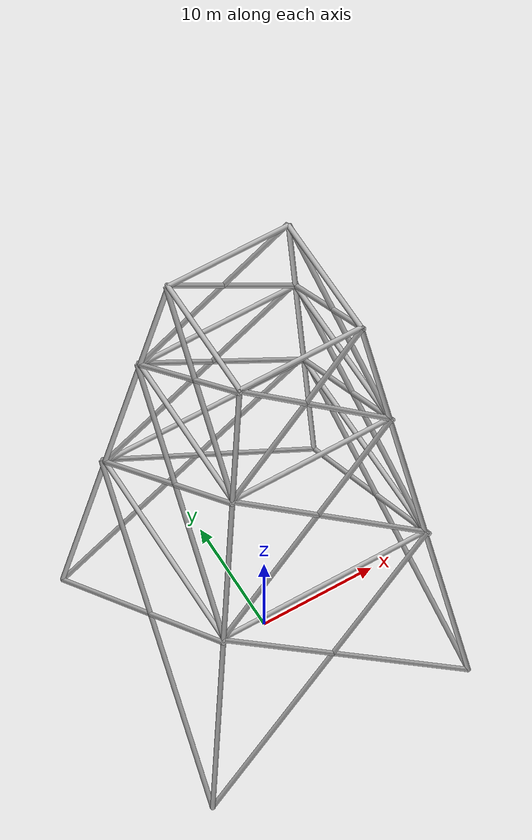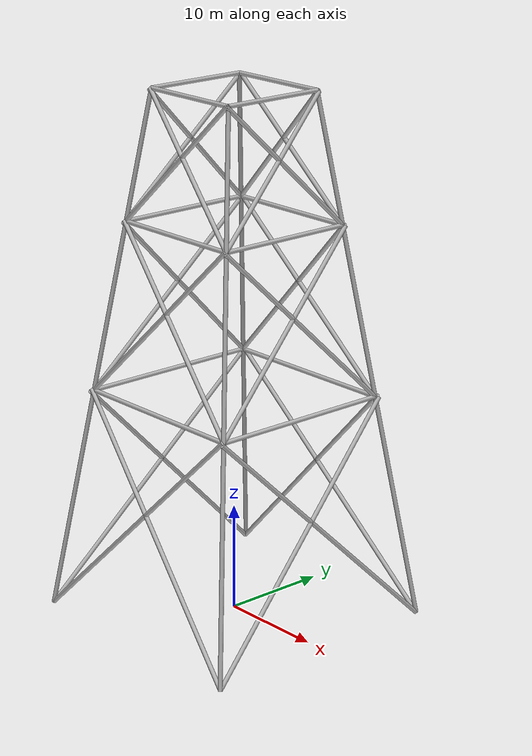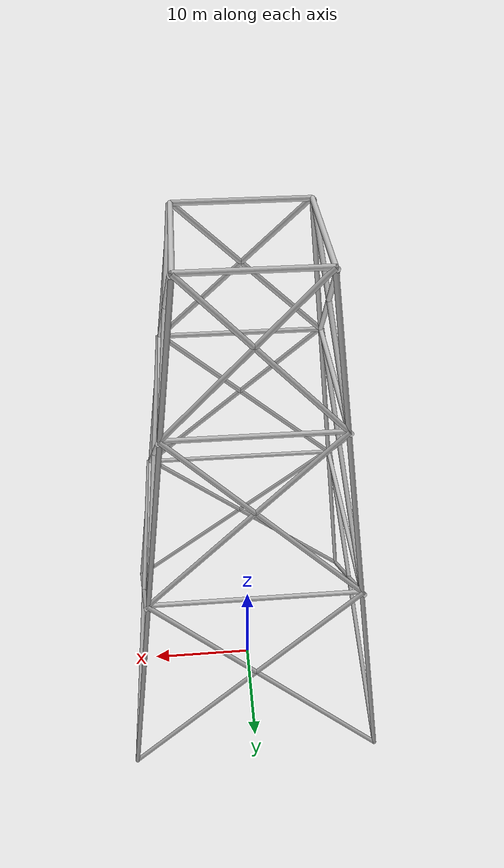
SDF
<?xml version="1.0" ?>
<sdf version="1.6">
  <model name="full_jacket">
    <static>true</static>
    <link name="base_link">
      <pose>0 0 0 0 0 0</pose>
      <visual name="base_link">
        <geometry>
          <box><size>0.01 0.01 0.01</size></box>
        </geometry>
      </visual>
    </link>

    # 4 legs of the jacket structure
    <link name="leg1">
      <pose>-8.395 -8.395 24.135 -0.1396 0.1396 0</pose>
      <visual name="visual_leg1">
        <geometry>
          <cylinder>
            <radius>0.2</radius>
            <length>49.28</length>
          </cylinder>
        </geometry>
      </visual>
      <collision name="collision_leg1">
        <geometry>
          <cylinder>
            <radius>0.2</radius>
            <length>49.28</length>
          </cylinder>
        </geometry>
      </collision>
      <inertial>
        <mass>0.5</mass>
        <inertia>
          <ixx>0.5</ixx><iyy>0.5</iyy><izz>0.5</izz>
          <ixy>0.0</ixy><ixz>0.0</ixz><iyz>0.0</iyz>
        </inertia>
      </inertial>
    </link>
    <joint name="joint_leg1" type="fixed">
      <parent>base_link</parent>
      <child>leg1</child>
    </joint>
    <link name="leg2">
      <pose>8.395 -8.395 24.135 -0.1396 -0.1396 0</pose>
      <visual name="visual_leg2">
        <geometry>
          <cylinder>
            <radius>0.2</radius>
            <length>49.28</length>
          </cylinder>
        </geometry>
      </visual>
      <collision name="collision_leg2">
        <geometry>
          <cylinder>
            <radius>0.2</radius>
            <length>49.28</length>
          </cylinder>
        </geometry>
      </collision>
      <inertial>
        <mass>0.5</mass>
        <inertia>
          <ixx>0.5</ixx><iyy>0.5</iyy><izz>0.5</izz>
          <ixy>0.0</ixy><ixz>0.0</ixz><iyz>0.0</iyz>
        </inertia>
      </inertial>
    </link>
    <joint name="joint_leg2" type="fixed">
      <parent>base_link</parent>
      <child>leg2</child>
    </joint>
    <link name="leg3">
      <pose>8.395 8.395 24.135 0.1396 -0.1396 0</pose>
      <visual name="visual_leg3">
        <geometry>
          <cylinder>
            <radius>0.2</radius>
            <length>49.28</length>
          </cylinder>
        </geometry>
      </visual>
      <collision name="collision_leg3">
        <geometry>
          <cylinder>
            <radius>0.2</radius>
            <length>49.28</length>
          </cylinder>
        </geometry>
      </collision>
      <inertial>
        <mass>0.5</mass>
        <inertia>
          <ixx>0.5</ixx><iyy>0.5</iyy><izz>0.5</izz>
          <ixy>0.0</ixy><ixz>0.0</ixz><iyz>0.0</iyz>
        </inertia>
      </inertial>
    </link>
    <joint name="joint_leg3" type="fixed">
      <parent>base_link</parent>
      <child>leg3</child>
    </joint>
    <link name="leg4">
      <pose>-8.395 8.395 24.135 0.1396 0.1396 0</pose>
      <visual name="visual_leg4">
        <geometry>
          <cylinder>
            <radius>0.2</radius>
            <length>49.28</length>
          </cylinder>
        </geometry>z`
      </visual>
      <collision name="collision_leg4">
        <geometry>
          <cylinder>
            <radius>0.2</radius>
            <length>49.28</length>
          </cylinder>
        </geometry>
      </collision>
      <inertial>
        <mass>0.5</mass>
        <inertia>
          <ixx>0.5</ixx><iyy>0.5</iyy><izz>0.5</izz>
          <ixy>0.0</ixy><ixz>0.0</ixz><iyz>0.0</iyz>
        </inertia>
      </inertial>
    </link>
    <joint name="joint_leg4" type="fixed">
      <parent>base_link</parent>
      <child>leg4</child>
    </joint>

    # 12 horizontal connectors at top of each bay
    <link name="conn_12_48">
      <pose>0.0000 -5.0000 48.2700 0.0000 1.5708 0.0000</pose>
      <visual name="visual_conn_12_48">
        <geometry>
          <cylinder>
            <radius>0.2</radius>
            <length>10.0000</length>
          </cylinder>
        </geometry>
      </visual>
      <collision name="collision_conn_12_48">
        <geometry>
          <cylinder>
            <radius>0.2</radius>
            <length>10.0000</length>
          </cylinder>
        </geometry>
      </collision>
      <inertial>
        <mass>1.0</mass>
        <inertia>
          <ixx>0.5</ixx><iyy>0.5</iyy><izz>0.5</izz>
          <ixy>0.0</ixy><ixz>0.0</ixz><iyz>0.0</iyz>
        </inertia>
      </inertial>
    </link>
    <joint name="joint_conn_12_48" type="fixed">
      <parent>base_link</parent>
      <child>conn_12_48</child>
    </joint>
    <link name="conn_23_48">
      <pose>5.0000 0.0000 48.2700 1.5708 0.0000 0.0000</pose>
      <visual name="visual_conn_23_48">
        <geometry>
          <cylinder>
            <radius>0.2</radius>
            <length>10.0000</length>
          </cylinder>
        </geometry>
      </visual>
      <collision name="collision_conn_23_48">
        <geometry>
          <cylinder>
            <radius>0.2</radius>
            <length>10.0000</length>
          </cylinder>
        </geometry>
      </collision>
      <inertial>
        <mass>1.0</mass>
        <inertia>
          <ixx>0.5</ixx><iyy>0.5</iyy><izz>0.5</izz>
          <ixy>0.0</ixy><ixz>0.0</ixz><iyz>0.0</iyz>
        </inertia>
      </inertial>
    </link>
    <joint name="joint_conn_23_48" type="fixed">
      <parent>base_link</parent>
      <child>conn_23_48</child>
    </joint>
    <link name="conn_34_48">
      <pose>0.0000 5.0000 48.2700 0.0000 1.5708 0.0000</pose>
      <visual name="visual_conn_34_48">
        <geometry>
          <cylinder>
            <radius>0.2</radius>
            <length>10.0000</length>
          </cylinder>
        </geometry>
      </visual>
      <collision name="collision_conn_34_48">
        <geometry>
          <cylinder>
            <radius>0.2</radius>
            <length>10.0000</length>
          </cylinder>
        </geometry>
      </collision>
      <inertial>
        <mass>1.0</mass>
        <inertia>
          <ixx>0.5</ixx><iyy>0.5</iyy><izz>0.5</izz>
          <ixy>0.0</ixy><ixz>0.0</ixz><iyz>0.0</iyz>
        </inertia>
      </inertial>
    </link>
    <joint name="joint_conn_34_48" type="fixed">
      <parent>base_link</parent>
      <child>conn_34_48</child>
    </joint>
    <link name="conn_41_48">
      <pose>-5.0000 0.0000 48.2700 1.5708 0.0000 0.0000</pose>
      <visual name="visual_conn_41_48">
        <geometry>
          <cylinder>
            <radius>0.2</radius>
            <length>10.0000</length>
          </cylinder>
        </geometry>
      </visual>
      <collision name="collision_conn_41_48">
        <geometry>
          <cylinder>
            <radius>0.2</radius>
            <length>10.0000</length>
          </cylinder>
        </geometry>
      </collision>
      <inertial>
        <mass>1.0</mass>
        <inertia>
          <ixx>0.5</ixx><iyy>0.5</iyy><izz>0.5</izz>
          <ixy>0.0</ixy><ixz>0.0</ixz><iyz>0.0</iyz>
        </inertia>
      </inertial>
    </link>
    <joint name="joint_conn_41_48" type="fixed">
      <parent>base_link</parent>
      <child>conn_41_48</child>
    </joint>
    <link name="conn_12_36">
      <pose>0.0000 6.6544 36.5000 0.0000 1.5708 0.0000</pose>
      <visual name="visual_conn_12_36">
        <geometry>
          <cylinder>
            <radius>0.2</radius>
            <length>13.3089</length>
          </cylinder>
        </geometry>
      </visual>
      <collision name="collision_conn_12_36">
        <geometry>
          <cylinder>
            <radius>0.2</radius>
            <length>13.3089</length>
          </cylinder>
        </geometry>
      </collision>
      <inertial>
        <mass>1.0</mass>
        <inertia>
          <ixx>0.5</ixx><iyy>0.5</iyy><izz>0.5</izz>
          <ixy>0.0</ixy><ixz>0.0</ixz><iyz>0.0</iyz>
        </inertia>
      </inertial>
    </link>
    <joint name="joint_conn_12_36" type="fixed">
      <parent>base_link</parent>
      <child>conn_12_36</child>
    </joint>
    <link name="conn_23_36">
      <pose>-6.6544 0.0000 36.5000 1.5708 0.0000 0.0000</pose>
      <visual name="visual_conn_23_36">
        <geometry>
          <cylinder>
            <radius>0.2</radius>
            <length>13.3089</length>
          </cylinder>
        </geometry>
      </visual>
      <collision name="collision_conn_23_36">
        <geometry>
          <cylinder>
            <radius>0.2</radius>
            <length>13.3089</length>
          </cylinder>
        </geometry>
      </collision>
      <inertial>
        <mass>1.0</mass>
        <inertia>
          <ixx>0.5</ixx><iyy>0.5</iyy><izz>0.5</izz>
          <ixy>0.0</ixy><ixz>0.0</ixz><iyz>0.0</iyz>
        </inertia>
      </inertial>
    </link>
    <joint name="joint_conn_23_36" type="fixed">
      <parent>base_link</parent>
      <child>conn_23_36</child>
    </joint>
    <link name="conn_34_36">
      <pose>0.0000 -6.6544 36.5000 0.0000 1.5708 0.0000</pose>
      <visual name="visual_conn_34_36">
        <geometry>
          <cylinder>
            <radius>0.2</radius>
            <length>13.3089</length>
          </cylinder>
        </geometry>
      </visual>
      <collision name="collision_conn_34_36">
        <geometry>
          <cylinder>
            <radius>0.2</radius>
            <length>13.3089</length>
          </cylinder>
        </geometry>
      </collision>
      <inertial>
        <mass>1.0</mass>
        <inertia>
          <ixx>0.5</ixx><iyy>0.5</iyy><izz>0.5</izz>
          <ixy>0.0</ixy><ixz>0.0</ixz><iyz>0.0</iyz>
        </inertia>
      </inertial>
    </link>
    <joint name="joint_conn_34_36" type="fixed">
      <parent>base_link</parent>
      <child>conn_34_36</child>
    </joint>
    <link name="conn_41_36">
      <pose>6.6544 0.0000 36.5000 1.5708 0.0000 0.0000</pose>
      <visual name="visual_conn_41_36">
        <geometry>
          <cylinder>
            <radius>0.2</radius>
            <length>13.3089</length>
          </cylinder>
        </geometry>
      </visual>
      <collision name="collision_conn_41_36">
        <geometry>
          <cylinder>
            <radius>0.2</radius>
            <length>13.3089</length>
          </cylinder>
        </geometry>
      </collision>
      <inertial>
        <mass>1.0</mass>
        <inertia>
          <ixx>0.5</ixx><iyy>0.5</iyy><izz>0.5</izz>
          <ixy>0.0</ixy><ixz>0.0</ixz><iyz>0.0</iyz>
        </inertia>
      </inertial>
    </link>
    <joint name="joint_conn_41_36" type="fixed">
      <parent>base_link</parent>
      <child>conn_41_36</child>
    </joint>
    <link name="conn_12_20">
      <pose>0.0000 8.8557 20.8400 0.0000 1.5708 0.0000</pose>
      <visual name="visual_conn_12_20">
        <geometry>
          <cylinder>
            <radius>0.2</radius>
            <length>17.7113</length>
          </cylinder>
        </geometry>
      </visual>
      <collision name="collision_conn_12_20">
        <geometry>
          <cylinder>
            <radius>0.2</radius>
            <length>17.7113</length>
          </cylinder>
        </geometry>
      </collision>
      <inertial>
        <mass>1.0</mass>
        <inertia>
          <ixx>0.5</ixx><iyy>0.5</iyy><izz>0.5</izz>
          <ixy>0.0</ixy><ixz>0.0</ixz><iyz>0.0</iyz>
        </inertia>
      </inertial>
    </link>
    <joint name="joint_conn_12_20" type="fixed">
      <parent>base_link</parent>
      <child>conn_12_20</child>
    </joint>
    <link name="conn_23_20">
      <pose>-8.8557 0.0000 20.8400 1.5708 0.0000 0.0000</pose>
      <visual name="visual_conn_23_20">
        <geometry>
          <cylinder>
            <radius>0.2</radius>
            <length>17.7113</length>
          </cylinder>
        </geometry>
      </visual>
      <collision name="collision_conn_23_20">
        <geometry>
          <cylinder>
            <radius>0.2</radius>
            <length>17.7113</length>
          </cylinder>
        </geometry>
      </collision>
      <inertial>
        <mass>1.0</mass>
        <inertia>
          <ixx>0.5</ixx><iyy>0.5</iyy><izz>0.5</izz>
          <ixy>0.0</ixy><ixz>0.0</ixz><iyz>0.0</iyz>
        </inertia>
      </inertial>
    </link>
    <joint name="joint_conn_23_20" type="fixed">
      <parent>base_link</parent>
      <child>conn_23_20</child>
    </joint>
    <link name="conn_34_20">
      <pose>0.0000 -8.8557 20.8400 0.0000 1.5708 0.0000</pose>
      <visual name="visual_conn_34_20">
        <geometry>
          <cylinder>
            <radius>0.2</radius>
            <length>17.7113</length>
          </cylinder>
        </geometry>
      </visual>
      <collision name="collision_conn_34_20">
        <geometry>
          <cylinder>
            <radius>0.2</radius>
            <length>17.7113</length>
          </cylinder>
        </geometry>
      </collision>
      <inertial>
        <mass>1.0</mass>
        <inertia>
          <ixx>0.5</ixx><iyy>0.5</iyy><izz>0.5</izz>
          <ixy>0.0</ixy><ixz>0.0</ixz><iyz>0.0</iyz>
        </inertia>
      </inertial>
    </link>
    <joint name="joint_conn_34_20" type="fixed">
      <parent>base_link</parent>
      <child>conn_34_20</child>
    </joint>
    <link name="conn_41_20">
      <pose>8.8557 0.0000 20.8400 1.5708 0.0000 0.0000</pose>
      <visual name="visual_conn_41_20">
        <geometry>
          <cylinder>
            <radius>0.2</radius>
            <length>17.7113</length>
          </cylinder>
        </geometry>
      </visual>
      <collision name="collision_conn_41_20">
        <geometry>
          <cylinder>
            <radius>0.2</radius>
            <length>17.7113</length>
          </cylinder>
        </geometry>
      </collision>
      <inertial>
        <mass>1.0</mass>
        <inertia>
          <ixx>0.5</ixx><iyy>0.5</iyy><izz>0.5</izz>
          <ixy>0.0</ixy><ixz>0.0</ixz><iyz>0.0</iyz>
        </inertia>
      </inertial>
    </link>
    <joint name="joint_conn_41_20" type="fixed">
      <parent>base_link</parent>
      <child>conn_41_20</child>
    </joint>

    # X-braces for bay 1

    <link name="xbrace_12_1_1">
    <pose>-11.785 -11.785 0.000 0.0000 0.7854 0.1316</pose>
    <visual name="visual_xbrace_12_1_1">
    	<pose>0.000 0.000 14.805 0.000 0.000 0.000</pose>
        <geometry>
            <cylinder>
                <radius>0.2</radius>
                <length>29.61</length>
            </cylinder>
        </geometry>
    </visual>
    <collision name="collision_xbrace_12_1_1">
        <geometry>
            <cylinder>
                <radius>0.2</radius>
                <length>22.058</length>
            </cylinder>
        </geometry>
    </collision>
    <inertial>
        <mass>0.5</mass>
        <inertia>
            <ixx>0.5</ixx>
            <iyy>0.5</iyy>
            <izz>0.5</izz>
            <ixy>0.0</ixy>
            <ixz>0.0</ixz>
            <iyz>0.0</iyz>
        </inertia>
    </inertial>
    </link>
    <joint name="joint_xbrace_12_1_1" type="fixed">
    <parent>base_link</parent>
    <child>xbrace_12_1_1</child>
    </joint>
    <link name="xbrace_12_1_2">
    <pose>11.785 -11.785 0.000 0.0000 -0.7854 -0.1316</pose>
    <visual name="visual_xbrace_12_1_1">
    	<pose>0.000 0.000 14.805 0.000 0.000 0.000</pose>
        <geometry>
            <cylinder>
                <radius>0.2</radius>
                <length>29.61</length>
            </cylinder>
        </geometry>
    </visual>
    <collision name="collision_xbrace_12_1_2">
        <geometry>
            <cylinder>
                <radius>0.2</radius>
                <length>22.058</length>
            </cylinder>
        </geometry>
    </collision>
    <inertial>
        <mass>0.5</mass>
        <pose>0 0 12.07 0 0 0</pose>
        <inertia>
            <ixx>0.5</ixx>
            <iyy>0.5</iyy>
            <izz>0.5</izz>
            <ixy>0.0</ixy>
            <ixz>0.0</ixz>
            <iyz>0.0</iyz>
        </inertia>
    </inertial>
    </link>
    <joint name="joint_xbrace_12_1_2" type="fixed">
    <parent>base_link</parent>
    <child>xbrace_12_1_2</child>
    </joint>
    <link name="xbrace_23_1_1">
    <pose>11.785 11.785 0.000 0.7854 -0.1316 0.0000</pose>
    <visual name="visual_xbrace_23_1_1">
    	<pose>0.000 0.000 14.805 0.000 0.000 0.000</pose>
        <geometry>
            <cylinder>
                <radius>0.2</radius>
                <length>29.61</length>
            </cylinder>
        </geometry>
    </visual>
    <collision name="collision_xbrace_23_1_1">
        <geometry>
            <cylinder>
                <radius>0.2</radius>
                <length>22.058</length>
            </cylinder>
        </geometry>
    </collision>
    <inertial>
        <mass>0.5</mass>
        <inertia>
            <ixx>0.5</ixx>
            <iyy>0.5</iyy>
            <izz>0.5</izz>
            <ixy>0.0</ixy>
            <ixz>0.0</ixz>
            <iyz>0.0</iyz>
        </inertia>
    </inertial>
    </link>
    <joint name="joint_xbrace_23_1_1" type="fixed">
    <parent>base_link</parent>
    <child>xbrace_23_1_1</child>
    </joint>
    <link name="xbrace_23_1_2">
    <pose>11.785 -11.785 0.000 -0.7854 -0.1316 0.0000</pose>
    <visual name="visual_xbrace_23_1_2">
    	<pose>0.000 0.000 14.805 0.000 0.000 0.000</pose>
        <geometry>
            <cylinder>
                <radius>0.2</radius>
                <length>29.61</length>
            </cylinder>
        </geometry>
    </visual>
    <collision name="collision_xbrace_23_1_2">
        <geometry>
            <cylinder>
                <radius>0.2</radius>
                <length>22.058</length>
            </cylinder>
        </geometry>
    </collision>
    <inertial>
        <mass>0.5</mass>
        <pose>0 0 12.07 0 0 0</pose>
        <inertia>
            <ixx>0.5</ixx>
            <iyy>0.5</iyy>
            <izz>0.5</izz>
            <ixy>0.0</ixy>
            <ixz>0.0</ixz>
            <iyz>0.0</iyz>
        </inertia>
    </inertial>
    </link>
    <joint name="joint_xbrace_23_1_2" type="fixed">
    <parent>base_link</parent>
    <child>xbrace_23_1_2</child>
    </joint>
    <link name="xbrace_34_1_1">
    <pose>11.785 11.785 0.000 0.0000 -0.7854 0.1316</pose>
    <visual name="visual_xbrace_34_1_1">
    	<pose>0.000 0.000 14.805 0.000 0.000 0.000</pose>
        <geometry>
            <cylinder>
                <radius>0.2</radius>
                <length>29.61</length>
            </cylinder>
        </geometry>
    </visual>
    <collision name="collision_xbrace_34_1_1">
        <geometry>
            <cylinder>
                <radius>0.2</radius>
                <length>22.058</length>
            </cylinder>
        </geometry>
    </collision>
    <inertial>
        <mass>0.5</mass>
        <inertia>
            <ixx>0.5</ixx>
            <iyy>0.5</iyy>
            <izz>0.5</izz>
            <ixy>0.0</ixy>
            <ixz>0.0</ixz>
            <iyz>0.0</iyz>
        </inertia>
    </inertial>
    </link>
    <joint name="joint_xbrace_34_1_1" type="fixed">
    <parent>base_link</parent>
    <child>xbrace_34_1_1</child>
    </joint>
    <link name="xbrace_34_1_2">
    <pose>-11.785 11.785 0.000 0.0000 0.7854 -0.1316</pose>
    <visual name="visual_xbrace_34_1_1">
    	<pose>0.000 0.000 14.805 0.000 0.000 0.000</pose>
        <geometry>
            <cylinder>
                <radius>0.2</radius>
                <length>29.61</length>
            </cylinder>
        </geometry>
    </visual>
    <collision name="collision_xbrace_34_1_2">
        <geometry>
            <cylinder>
                <radius>0.2</radius>
                <length>22.058</length>
            </cylinder>
        </geometry>
    </collision>
    <inertial>
        <mass>0.5</mass>
        <pose>0 0 12.07 0 0 0</pose>
        <inertia>
            <ixx>0.5</ixx>
            <iyy>0.5</iyy>
            <izz>0.5</izz>
            <ixy>0.0</ixy>
            <ixz>0.0</ixz>
            <iyz>0.0</iyz>
        </inertia>
    </inertial>
    </link>
    <joint name="joint_xbrace_34_1_2" type="fixed">
    <parent>base_link</parent>
    <child>xbrace_34_1_2</child>
    </joint>
    <link name="xbrace_41_1_1">
    <pose>-11.785 11.785 0.000 0.7854 0.1316 0.0000</pose>
    <visual name="visual_xbrace_41_1_1">
    	<pose>0.000 0.000 14.805 0.000 0.000 0.000</pose>
        <geometry>
            <cylinder>
                <radius>0.2</radius>
                <length>29.61</length>
            </cylinder>
        </geometry>
    </visual>
    <collision name="collision_xbrace_41_1_1">
        <geometry>
            <cylinder>
                <radius>0.2</radius>
                <length>22.058</length>
            </cylinder>
        </geometry>
    </collision>
    <inertial>
        <mass>0.5</mass>
        <inertia>
            <ixx>0.5</ixx>
            <iyy>0.5</iyy>
            <izz>0.5</izz>
            <ixy>0.0</ixy>
            <ixz>0.0</ixz>
            <iyz>0.0</iyz>
        </inertia>
    </inertial>
    </link>
    <joint name="joint_xbrace_41_1_1" type="fixed">
    <parent>base_link</parent>
    <child>xbrace_41_1_1</child>
    </joint>
    <link name="xbrace_41_1_2">
    <pose>-11.785 -11.785 0.000 -0.7854 0.1316 0.0000</pose>
    <visual name="visual_xbrace_41_1_2">
    	<pose>0.000 0.000 14.805 0.000 0.000 0.000</pose>
        <geometry>
            <cylinder>
                <radius>0.2</radius>
                <length>29.61</length>
            </cylinder>
        </geometry>
    </visual>
    <collision name="collision_xbrace_41_1_2">
        <geometry>
            <cylinder>
                <radius>0.2</radius>
                <length>22.058</length>
            </cylinder>
        </geometry>
    </collision>
    <inertial>
        <mass>0.5</mass>
        <pose>0 0 12.07 0 0 0</pose>
        <inertia>
            <ixx>0.5</ixx>
            <iyy>0.5</iyy>
            <izz>0.5</izz>
            <ixy>0.0</ixy>
            <ixz>0.0</ixz>
            <iyz>0.0</iyz>
        </inertia>
    </inertial>
    </link>
    <joint name="joint_xbrace_41_1_2" type="fixed">
    <parent>base_link</parent>
    <child>xbrace_41_1_2</child>
    </joint>

    # X-braces for bay 2

    <link name="xbrace_12_2_1">
    <pose>-8.855 -8.855 20.84 0.0000 0.7854 0.1316</pose>
    <visual name="visual_xbrace_12_2_1">
    	<pose>0.000 0.000 11.105 0.000 0.000 0.000</pose>
        <geometry>
            <cylinder>
                <radius>0.2</radius>
                <length>22.21</length>
            </cylinder>
        </geometry>
    </visual>
    <collision name="collision_xbrace_12_2_1">
        <geometry>
            <cylinder>
                <radius>0.2</radius>
                <length>22.21</length>
            </cylinder>
        </geometry>
    </collision>
    <inertial>
        <mass>0.5</mass>
        <inertia>
            <ixx>0.5</ixx>
            <iyy>0.5</iyy>
            <izz>0.5</izz>
            <ixy>0.0</ixy>
            <ixz>0.0</ixz>
            <iyz>0.0</iyz>
        </inertia>
    </inertial>
    </link>
    <joint name="joint_xbrace_12_2_1" type="fixed">
    <parent>base_link</parent>
    <child>xbrace_12_2_1</child>
    </joint>
    <link name="xbrace_12_2_2">
    <pose>8.855 -8.855 20.84 0.0000 -0.7854 -0.1316</pose>
    <visual name="visual_xbrace_12_2_1">
    	<pose>0.000 0.000 11.105 0.000 0.000 0.000</pose>
        <geometry>
            <cylinder>
                <radius>0.2</radius>
                <length>22.21</length>
            </cylinder>
        </geometry>
    </visual>
    <collision name="collision_xbrace_12_2_2">
        <geometry>
            <cylinder>
                <radius>0.2</radius>
                <length>22.21</length>
            </cylinder>
        </geometry>
    </collision>
    <inertial>
        <mass>0.5</mass>
        <pose>0 0 12.07 0 0 0</pose>
        <inertia>
            <ixx>0.5</ixx>
            <iyy>0.5</iyy>
            <izz>0.5</izz>
            <ixy>0.0</ixy>
            <ixz>0.0</ixz>
            <iyz>0.0</iyz>
        </inertia>
    </inertial>
    </link>
    <joint name="joint_xbrace_12_2_2" type="fixed">
    <parent>base_link</parent>
    <child>xbrace_12_2_2</child>
    </joint>
    <link name="xbrace_23_2_1">
    <pose>8.855 8.855 20.84 0.7854 -0.1316 0.0000</pose>
    <visual name="visual_xbrace_23_2_1">
    	<pose>0.000 0.000 11.105 0.000 0.000 0.000</pose>
        <geometry>
            <cylinder>
                <radius>0.2</radius>
                <length>22.21</length>
            </cylinder>
        </geometry>
    </visual>
    <collision name="collision_xbrace_23_2_1">
        <geometry>
            <cylinder>
                <radius>0.2</radius>
                <length>22.21</length>
            </cylinder>
        </geometry>
    </collision>
    <inertial>
        <mass>0.5</mass>
        <inertia>
            <ixx>0.5</ixx>
            <iyy>0.5</iyy>
            <izz>0.5</izz>
            <ixy>0.0</ixy>
            <ixz>0.0</ixz>
            <iyz>0.0</iyz>
        </inertia>
    </inertial>
    </link>
    <joint name="joint_xbrace_23_2_1" type="fixed">
    <parent>base_link</parent>
    <child>xbrace_23_2_1</child>
    </joint>
    <link name="xbrace_23_2_2">
    <pose>8.855 -8.855 20.84 -0.7854 -0.1316 0.0000</pose>
    <visual name="visual_xbrace_23_2_2">
    	<pose>0.000 0.000 11.105 0.000 0.000 0.000</pose>
        <geometry>
            <cylinder>
                <radius>0.2</radius>
                <length>22.21</length>
            </cylinder>
        </geometry>
    </visual>
    <collision name="collision_xbrace_23_2_2">
        <geometry>
            <cylinder>
                <radius>0.2</radius>
                <length>22.21</length>
            </cylinder>
        </geometry>
    </collision>
    <inertial>
        <mass>0.5</mass>
        <pose>0 0 12.07 0 0 0</pose>
        <inertia>
            <ixx>0.5</ixx>
            <iyy>0.5</iyy>
            <izz>0.5</izz>
            <ixy>0.0</ixy>
            <ixz>0.0</ixz>
            <iyz>0.0</iyz>
        </inertia>
    </inertial>
    </link>
    <joint name="joint_xbrace_23_2_2" type="fixed">
    <parent>base_link</parent>
    <child>xbrace_23_2_2</child>
    </joint>
    <link name="xbrace_34_2_1">
    <pose>8.855 8.855 20.84 0.0000 -0.7854 0.1316</pose>
    <visual name="visual_xbrace_34_2_1">
    	<pose>0.000 0.000 11.105 0.000 0.000 0.000</pose>
        <geometry>
            <cylinder>
                <radius>0.2</radius>
                <length>22.21</length>
            </cylinder>
        </geometry>
    </visual>
    <collision name="collision_xbrace_34_2_1">
        <geometry>
            <cylinder>
                <radius>0.2</radius>
                <length>22.21</length>
            </cylinder>
        </geometry>
    </collision>
    <inertial>
        <mass>0.5</mass>
        <inertia>
            <ixx>0.5</ixx>
            <iyy>0.5</iyy>
            <izz>0.5</izz>
            <ixy>0.0</ixy>
            <ixz>0.0</ixz>
            <iyz>0.0</iyz>
        </inertia>
    </inertial>
    </link>
    <joint name="joint_xbrace_34_2_1" type="fixed">
    <parent>base_link</parent>
    <child>xbrace_34_2_1</child>
    </joint>
    <link name="xbrace_34_2_2">
    <pose>-8.855 8.855 20.84 0.0000 0.7854 -0.1316</pose>
    <visual name="visual_xbrace_34_2_1">
    	<pose>0.000 0.000 11.105 0.000 0.000 0.000</pose>
        <geometry>
            <cylinder>
                <radius>0.2</radius>
                <length>22.21</length>
            </cylinder>
        </geometry>
    </visual>
    <collision name="collision_xbrace_34_2_2">
        <geometry>
            <cylinder>
                <radius>0.2</radius>
                <length>22.21</length>
            </cylinder>
        </geometry>
    </collision>
    <inertial>
        <mass>0.5</mass>
        <pose>0 0 12.07 0 0 0</pose>
        <inertia>
            <ixx>0.5</ixx>
            <iyy>0.5</iyy>
            <izz>0.5</izz>
            <ixy>0.0</ixy>
            <ixz>0.0</ixz>
            <iyz>0.0</iyz>
        </inertia>
    </inertial>
    </link>
    <joint name="joint_xbrace_34_2_2" type="fixed">
    <parent>base_link</parent>
    <child>xbrace_34_2_2</child>
    </joint>
    <link name="xbrace_41_2_1">
    <pose>-8.855 8.855 20.84 0.7854 0.1316 0.0000</pose>
    <visual name="visual_xbrace_41_2_1">
    	<pose>0.000 0.000 11.105 0.000 0.000 0.000</pose>
        <geometry>
            <cylinder>
                <radius>0.2</radius>
                <length>22.21</length>
            </cylinder>
        </geometry>
    </visual>
    <collision name="collision_xbrace_41_2_1">
        <geometry>
            <cylinder>
                <radius>0.2</radius>
                <length>22.21</length>
            </cylinder>
        </geometry>
    </collision>
    <inertial>
        <mass>0.5</mass>
        <inertia>
            <ixx>0.5</ixx>
            <iyy>0.5</iyy>
            <izz>0.5</izz>
            <ixy>0.0</ixy>
            <ixz>0.0</ixz>
            <iyz>0.0</iyz>
        </inertia>
    </inertial>
    </link>
    <joint name="joint_xbrace_41_2_1" type="fixed">
    <parent>base_link</parent>
    <child>xbrace_41_2_1</child>
    </joint>
    <link name="xbrace_41_2_2">
    <pose>-8.855 -8.855 20.84 -0.7854 0.1316 0.0000</pose>
    <visual name="visual_xbrace_41_2_2">
    	<pose>0.000 0.000 11.105 0.000 0.000 0.000</pose>
        <geometry>
            <cylinder>
                <radius>0.2</radius>
                <length>22.21</length>
            </cylinder>
        </geometry>
    </visual>
    <collision name="collision_xbrace_41_2_2">
        <geometry>
            <cylinder>
                <radius>0.2</radius>
                <length>22.21</length>
            </cylinder>
        </geometry>
    </collision>
    <inertial>
        <mass>0.5</mass>
        <pose>0 0 12.07 0 0 0</pose>
        <inertia>
            <ixx>0.5</ixx>
            <iyy>0.5</iyy>
            <izz>0.5</izz>
            <ixy>0.0</ixy>
            <ixz>0.0</ixz>
            <iyz>0.0</iyz>
        </inertia>
    </inertial>
    </link>
    <joint name="joint_xbrace_41_2_2" type="fixed">
    <parent>base_link</parent>
    <child>xbrace_41_2_2</child>
    </joint>

    # X-braces for bay 3

    <link name="xbrace_12_3_1">
    <pose>-6.655 -6.655 36.5 0.0000 0.7854 0.1316</pose>
    <visual name="visual_xbrace_12_3_1">
    	<pose>0.000 0.000 8.325 0.000 0.000 0.000</pose>
        <geometry>
            <cylinder>
                <radius>0.2</radius>
                <length>16.65</length>
            </cylinder>
        </geometry>
    </visual>
    <collision name="collision_xbrace_12_3_1">
        <geometry>
            <cylinder>
                <radius>0.2</radius>
                <length>16.65</length>
            </cylinder>
        </geometry>
    </collision>
    <inertial>
        <mass>0.5</mass>
        <inertia>
            <ixx>0.5</ixx>
            <iyy>0.5</iyy>
            <izz>0.5</izz>
            <ixy>0.0</ixy>
            <ixz>0.0</ixz>
            <iyz>0.0</iyz>
        </inertia>
    </inertial>
    </link>
    <joint name="joint_xbrace_12_3_1" type="fixed">
    <parent>base_link</parent>
    <child>xbrace_12_3_1</child>
    </joint>
    <link name="xbrace_12_3_2">
    <pose>6.655 -6.655 36.5 0.0000 -0.7854 -0.1316</pose>
    <visual name="visual_xbrace_12_3_1">
    	<pose>0.000 0.000 8.325 0.000 0.000 0.000</pose>
        <geometry>
            <cylinder>
                <radius>0.2</radius>
                <length>16.65</length>
            </cylinder>
        </geometry>
    </visual>
    <collision name="collision_xbrace_12_3_2">
        <geometry>
            <cylinder>
                <radius>0.2</radius>
                <length>16.65</length>
            </cylinder>
        </geometry>
    </collision>
    <inertial>
        <mass>0.5</mass>
        <pose>0 0 12.07 0 0 0</pose>
        <inertia>
            <ixx>0.5</ixx>
            <iyy>0.5</iyy>
            <izz>0.5</izz>
            <ixy>0.0</ixy>
            <ixz>0.0</ixz>
            <iyz>0.0</iyz>
        </inertia>
    </inertial>
    </link>
    <joint name="joint_xbrace_12_3_2" type="fixed">
    <parent>base_link</parent>
    <child>xbrace_12_3_2</child>
    </joint>
    <link name="xbrace_23_3_1">
    <pose>6.655 6.655 36.5 0.7854 -0.1316 0.0000</pose>
    <visual name="visual_xbrace_23_3_1">
    	<pose>0.000 0.000 8.325 0.000 0.000 0.000</pose>
        <geometry>
            <cylinder>
                <radius>0.2</radius>
                <length>16.65</length>
            </cylinder>
        </geometry>
    </visual>
    <collision name="collision_xbrace_23_3_1">
        <geometry>
            <cylinder>
                <radius>0.2</radius>
                <length>16.65</length>
            </cylinder>
        </geometry>
    </collision>
    <inertial>
        <mass>0.5</mass>
        <inertia>
            <ixx>0.5</ixx>
            <iyy>0.5</iyy>
            <izz>0.5</izz>
            <ixy>0.0</ixy>
            <ixz>0.0</ixz>
            <iyz>0.0</iyz>
        </inertia>
    </inertial>
    </link>
    <joint name="joint_xbrace_23_3_1" type="fixed">
    <parent>base_link</parent>
    <child>xbrace_23_3_1</child>
    </joint>
    <link name="xbrace_23_3_2">
    <pose>6.655 -6.655 36.5 -0.7854 -0.1316 0.0000</pose>
    <visual name="visual_xbrace_23_3_2">
    	<pose>0.000 0.000 8.325 0.000 0.000 0.000</pose>
        <geometry>
            <cylinder>
                <radius>0.2</radius>
                <length>16.65</length>
            </cylinder>
        </geometry>
    </visual>
    <collision name="collision_xbrace_23_3_2">
        <geometry>
            <cylinder>
                <radius>0.2</radius>
                <length>16.65</length>
            </cylinder>
        </geometry>
    </collision>
    <inertial>
        <mass>0.5</mass>
        <pose>0 0 12.07 0 0 0</pose>
        <inertia>
            <ixx>0.5</ixx>
            <iyy>0.5</iyy>
            <izz>0.5</izz>
            <ixy>0.0</ixy>
            <ixz>0.0</ixz>
            <iyz>0.0</iyz>
        </inertia>
    </inertial>
    </link>
    <joint name="joint_xbrace_23_3_2" type="fixed">
    <parent>base_link</parent>
    <child>xbrace_23_3_2</child>
    </joint>
    <link name="xbrace_34_3_1">
    <pose>6.655 6.655 36.5 0.0000 -0.7854 0.1316</pose>
    <visual name="visual_xbrace_34_3_1">
    	<pose>0.000 0.000 8.325 0.000 0.000 0.000</pose>
        <geometry>
            <cylinder>
                <radius>0.2</radius>
                <length>16.65</length>
            </cylinder>
        </geometry>
    </visual>
    <collision name="collision_xbrace_34_3_1">
        <geometry>
            <cylinder>
                <radius>0.2</radius>
                <length>16.65</length>
            </cylinder>
        </geometry>
    </collision>
    <inertial>
        <mass>0.5</mass>
        <inertia>
            <ixx>0.5</ixx>
            <iyy>0.5</iyy>
            <izz>0.5</izz>
            <ixy>0.0</ixy>
            <ixz>0.0</ixz>
            <iyz>0.0</iyz>
        </inertia>
    </inertial>
    </link>
    <joint name="joint_xbrace_34_3_1" type="fixed">
    <parent>base_link</parent>
    <child>xbrace_34_3_1</child>
    </joint>
    <link name="xbrace_34_3_2">
    <pose>-6.655 6.655 36.5 0.0000 0.7854 -0.1316</pose>
    <visual name="visual_xbrace_34_3_1">
    	<pose>0.000 0.000 8.325 0.000 0.000 0.000</pose>
        <geometry>
            <cylinder>
                <radius>0.2</radius>
                <length>16.65</length>
            </cylinder>
        </geometry>
    </visual>
    <collision name="collision_xbrace_34_3_2">
        <geometry>
            <cylinder>
                <radius>0.2</radius>
                <length>16.65</length>
            </cylinder>
        </geometry>
    </collision>
    <inertial>
        <mass>0.5</mass>
        <pose>0 0 12.07 0 0 0</pose>
        <inertia>
            <ixx>0.5</ixx>
            <iyy>0.5</iyy>
            <izz>0.5</izz>
            <ixy>0.0</ixy>
            <ixz>0.0</ixz>
            <iyz>0.0</iyz>
        </inertia>
    </inertial>
    </link>
    <joint name="joint_xbrace_34_3_2" type="fixed">
    <parent>base_link</parent>
    <child>xbrace_34_3_2</child>
    </joint>
    <link name="xbrace_41_3_1">
    <pose>-6.655 6.655 36.5 0.7854 0.1316 0.0000</pose>
    <visual name="visual_xbrace_41_3_1">
    	<pose>0.000 0.000 8.325 0.000 0.000 0.000</pose>
        <geometry>
            <cylinder>
                <radius>0.2</radius>
                <length>16.65</length>
            </cylinder>
        </geometry>
    </visual>
    <collision name="collision_xbrace_41_3_1">
        <geometry>
            <cylinder>
                <radius>0.2</radius>
                <length>16.65</length>
            </cylinder>
        </geometry>
    </collision>
    <inertial>
        <mass>0.5</mass>
        <inertia>
            <ixx>0.5</ixx>
            <iyy>0.5</iyy>
            <izz>0.5</izz>
            <ixy>0.0</ixy>
            <ixz>0.0</ixz>
            <iyz>0.0</iyz>
        </inertia>
    </inertial>
    </link>
    <joint name="joint_xbrace_41_3_1" type="fixed">
    <parent>base_link</parent>
    <child>xbrace_41_3_1</child>
    </joint>
    <link name="xbrace_41_3_2">
    <pose>-6.655 -6.655 36.5 -0.7854 0.1316 0.0000</pose>
    <visual name="visual_xbrace_41_3_2">
    	<pose>0.000 0.000 8.325 0.000 0.000 0.000</pose>
        <geometry>
            <cylinder>
                <radius>0.2</radius>
                <length>16.65</length>
            </cylinder>
        </geometry>
    </visual>
    <collision name="collision_xbrace_41_3_2">
        <geometry>
            <cylinder>
                <radius>0.2</radius>
                <length>16.65</length>
            </cylinder>
        </geometry>
    </collision>
    <inertial>
        <mass>0.5</mass>
        <pose>0 0 12.07 0 0 0</pose>
        <inertia>
            <ixx>0.5</ixx>
            <iyy>0.5</iyy>
            <izz>0.5</izz>
            <ixy>0.0</ixy>
            <ixz>0.0</ixz>
            <iyz>0.0</iyz>
        </inertia>
    </inertial>
    </link>
    <joint name="joint_xbrace_41_3_2" type="fixed">
    <parent>base_link</parent>
    <child>xbrace_41_3_2</child>
    </joint>
  </model>
</sdf>
